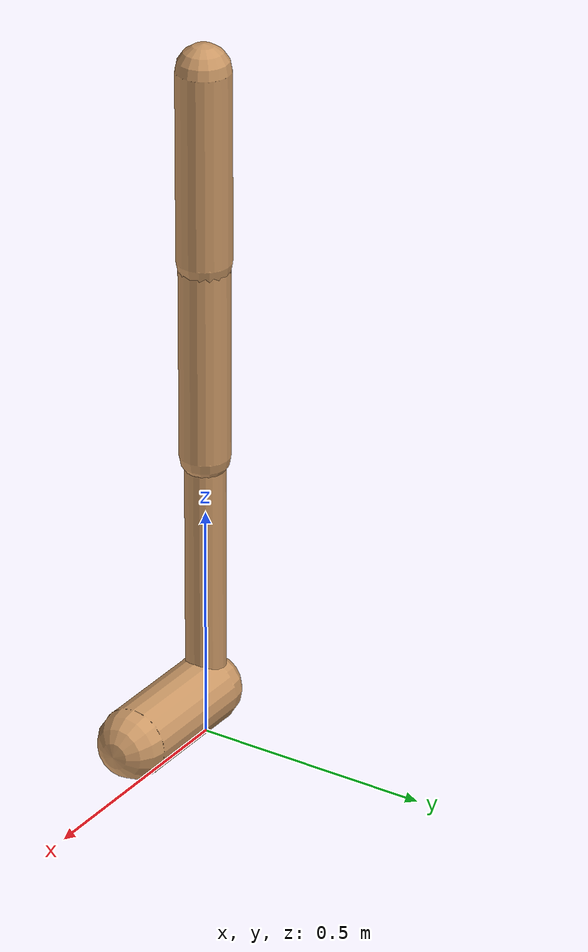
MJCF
<mujoco model="walker2d">
  <compiler angle="degree" coordinate="global" inertiafromgeom="true" />
  <default>
    <joint armature="0.01" damping=".1" limited="true" />
    <geom conaffinity="0" condim="3" contype="1" density="1000" friction="0.8 .1 .1" rgba="0.8 0.6 .4 1" />
  </default>
  <option integrator="RK4" timestep="0.002" />
  <worldbody>

    <body name="torso" pos="0 0 -0.05990640135794864">
      <joint armature="0" axis="1 0 0" damping="0" limited="false" name="ignorex" pos="0 0 0" stiffness="0" type="slide" />
      <joint armature="0" axis="0 0 1" damping="0" limited="false" name="ignorez" pos="0 0 0" ref="1.25" stiffness="0" type="slide" />
      <joint armature="0" axis="0 1 0" damping="0" limited="false" name="ignorey" pos="0 0 0" stiffness="0" type="hinge" />
      <geom fromto="0 0 1.45 0 0 1.05" name="torso_geom" size="0.055716246405517256" type="capsule" />
      <body name="thigh">
        <joint axis="0 -1 0" name="thigh_joint" pos="0 0 1.05" range="-150 0" type="hinge" />
        <geom fromto="0.0 0.0 1.05 0.0 0.0 0.6283767164327125" name="thigh_geom" size="0.051902225881383116" type="capsule" />
        <body name="leg" pos="0.0 0.0 0.028376716432712557">
          <joint axis="0 -1 0" name="leg_joint" pos="0 0 0.6" range="-150 0" type="hinge" />
          <geom fromto="0.0 0.0 0.6 0.0 0.0 0.13152968492523615" name="leg_geom" size="0.04152178070510649" type="capsule" />
          <body name="foot" pos="0.0 0.0 0.03152968492523614">
            <joint axis="0 -1 0" name="foot_joint" pos="0 0 0.1" range="-45 45" type="hinge" />
            <geom fromto="-0.0 0.0 0.10000000000000002 0.25696774538593686 0.0 0.10000000000000002" name="foot_geom" size="0.07331042206170889" type="capsule" />
          </body>
        </body>
      </body>

      <body name="thigh_left">
        <joint axis="0 -1 0" name="thigh_left_joint" pos="0 0 1.05" range="-150 0" type="hinge" />
        <geom fromto="0.0 0.0 1.05 0.0 0.0 0.6283767164327125" name="thigh_left_geom" rgba=".7 .3 .6 1" size="0.051902225881383116" type="capsule" />
        <body name="leg_left" pos="0.0 0.0 0.028376716432712557">
          <joint axis="0 -1 0" name="leg_left_joint" pos="0 0 0.6" range="-150 0" type="hinge" />
          <geom fromto="0.0 0.0 0.6 0.0 0.0 0.13152968492523615" name="leg_left_geom" rgba=".7 .3 .6 1" size="0.04152178070510649" type="capsule" />
          <body name="foot_left" pos="0.0 0.0 0.03152968492523614">
            <joint axis="0 -1 0" name="foot_left_joint" pos="0 0 0.1" range="-45 45" type="hinge" />
            <geom fromto="-0.0 0.0 0.10000000000000002 0.25696774538593686 0.0 0.10000000000000002" name="foot_left_geom" rgba=".7 .3 .6 1" size="0.07331042206170889" type="capsule" />
          </body>
        </body>
      </body>
    </body>
  </worldbody>
  <actuator>

    <motor ctrllimited="true" ctrlrange="-1.0 1.0" gear="100" joint="thigh_joint" />
    <motor ctrllimited="true" ctrlrange="-1.0 1.0" gear="100" joint="leg_joint" />
    <motor ctrllimited="true" ctrlrange="-1.0 1.0" gear="100" joint="foot_joint" />
    <motor ctrllimited="true" ctrlrange="-1.0 1.0" gear="100" joint="thigh_left_joint" />
    <motor ctrllimited="true" ctrlrange="-1.0 1.0" gear="100" joint="leg_left_joint" />
    <motor ctrllimited="true" ctrlrange="-1.0 1.0" gear="100" joint="foot_left_joint" />

  </actuator>
</mujoco>
